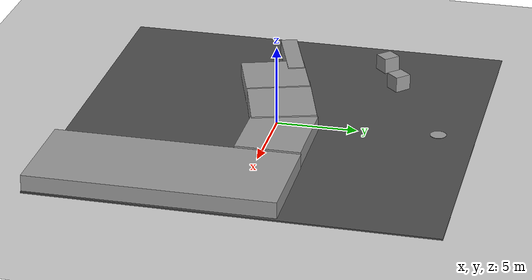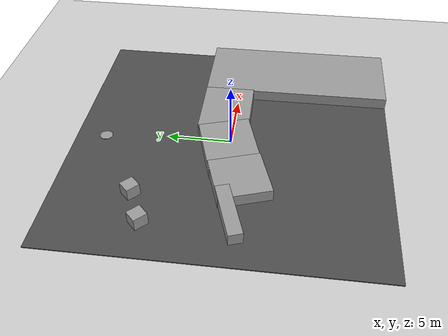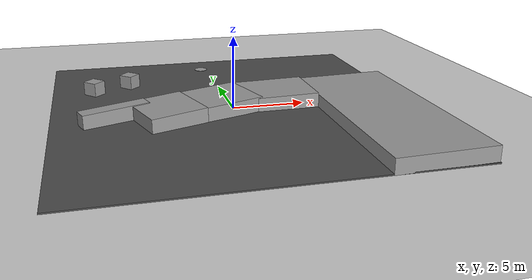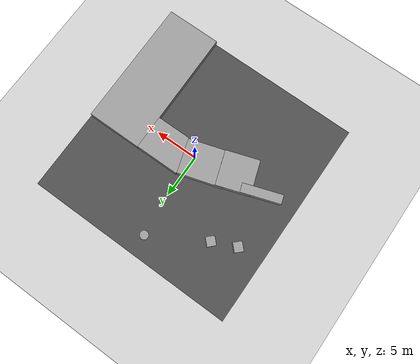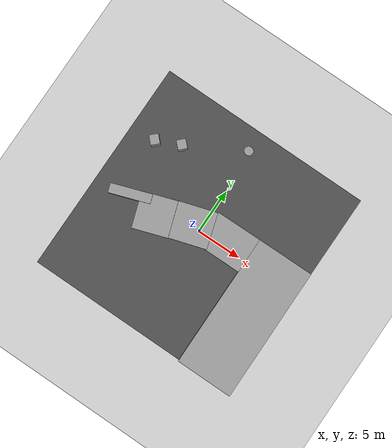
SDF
<sdf version="1.7">
 <world name="default">
  <light name="sun" type="directional">
   <pose>0 0 10 0 -0 0</pose>
   <diffuse>0.8 0.8 0.8 1</diffuse>
   <specular>0.2 0.2 0.2 1</specular>
   <attenuation>
    <range>1000</range>
    <constant>0.9</constant>
    <linear>0.01</linear>
    <quadratic>0.001</quadratic>
   </attenuation>
   <direction>-0.5 0.1 -0.9</direction>
   <spot><inner_angle>0</inner_angle><outer_angle>0</outer_angle><falloff>0</falloff></spot>
  </light>
  <model name="ground_plane">
   <static>1</static>
   <link name="link">
    <collision name="collision">
     <geometry><plane><normal>0 0 1</normal><size>100 100</size></plane></geometry>
     <surface><friction><ode><mu>100</mu><mu2>50</mu2></ode></friction></surface>
    </collision>
    <visual name="visual">
     <cast_shadows>0</cast_shadows>
     <geometry><plane><normal>0 0 1</normal><size>100 100</size></plane></geometry>
     <material>
      <script><uri>file://media/materials/scripts/gazebo.material</uri><name>Gazebo/Grey</name></script>
     </material>
    </visual>
    <velocity_decay><linear>0</linear><angular>0</angular></velocity_decay>
   </link>
  </model>
  <physics type="ode">
   <max_step_size>0.01</max_step_size>
   <real_time_factor>1</real_time_factor>
   <real_time_update_rate>100</real_time_update_rate>
  </physics>
  <scene><ambient>0.4 0.4 0.4 1</ambient><background>0.7 0.7 0.7 1</background><shadows>1</shadows></scene>
  <model name="asphalt_plane">
   <static>1</static>
   <link name="link">
    <collision name="collision"><geometry><box><size>24.4379 24.5229 0.1</size></box></geometry></collision>
    <visual name="visual">
     <cast_shadows>0</cast_shadows>
     <geometry><box><size>24.4379 24.5229 0.1</size></box></geometry>
     <material>
      <script>
       <uri>model://asphalt_plane/materials/scripts</uri>
       <uri>model://asphalt_plane/materials/textures</uri>
       <name>vrc/asphalt</name>
      </script>
     </material>
    </visual>
    <velocity_decay><linear>0</linear><angular>0</angular></velocity_decay>
   </link>
   <pose>0.00297 -0.01888 0 0 -0 0</pose>
  </model>
  <gravity>0 0 -9.8</gravity>
  <magnetic_field>6e-06 2.3e-05 -4.2e-05</magnetic_field>
  <atmosphere type="adiabatic"/>
  <spherical_coordinates>
   <surface_model>EARTH_WGS84</surface_model>
   <latitude_deg>0</latitude_deg>
   <longitude_deg>0</longitude_deg>
   <elevation>0</elevation>
   <heading_deg>0</heading_deg>
  </spherical_coordinates>
  <model name="target">
   <link name="link">
    <inertial>
     <mass>1</mass>
     <inertia><ixx>0.145833</ixx><ixy>0</ixy><ixz>0</ixz><iyy>0.145833</iyy><iyz>0</iyz><izz>0.125</izz></inertia>
    </inertial>
    <visual name="visual">
     <geometry><cylinder><radius>0.5</radius><length>0.0238306</length></cylinder></geometry>
     <material>
      <script><name>Gazebo/Grey</name><uri>file://media/materials/scripts/gazebo.material</uri></script>
      <shader type="pixel"/>
     </material>
    </visual>
    <collision name="collision">
     <geometry><cylinder><radius>0.5</radius><length>0.023831</length></cylinder></geometry>
     <surface>
      <friction>
       <ode><mu>1</mu><mu2>1</mu2><fdir1>0 0 0</fdir1><slip1>0</slip1><slip2>0</slip2></ode>
       <torsional>
        <coefficient>1</coefficient>
        <patch_radius>0</patch_radius>
        <surface_radius>0</surface_radius>
        <use_patch_radius>1</use_patch_radius>
        <ode><slip>0</slip></ode>
       </torsional>
      </friction>
      <bounce><restitution_coefficient>0</restitution_coefficient><threshold>1e+06</threshold></bounce>
      <contact>
       <collide_without_contact>0</collide_without_contact>
       <collide_without_contact_bitmask>1</collide_without_contact_bitmask>
       <collide_bitmask>1</collide_bitmask>
       <ode>
        <soft_cfm>0</soft_cfm>
        <soft_erp>0.2</soft_erp>
        <kp>1e+13</kp>
        <kd>1</kd>
        <max_vel>0.01</max_vel>
        <min_depth>0</min_depth>
       </ode>
       <bullet>
        <split_impulse>1</split_impulse>
        <split_impulse_penetration_threshold>-0.01</split_impulse_penetration_threshold>
        <soft_cfm>0</soft_cfm>
        <soft_erp>0.2</soft_erp>
        <kp>1e+13</kp>
        <kd>1</kd>
       </bullet>
      </contact>
     </surface>
    </collision>
   </link>
   <static>1</static>
   <pose>-0.479745 9.92893 0.061711 -0.000137 -0.000386 0.000976</pose>
  </model>
  <model name="obstacle0">
   <link name="link">
    <inertial>
     <mass>1</mass>
     <inertia>
      <ixx>0.166667</ixx>
      <ixy>0</ixy>
      <ixz>0</ixz>
      <iyy>0.166667</iyy>
      <iyz>0</iyz>
      <izz>0.166667</izz>
     </inertia>
    </inertial>
    <visual name="visual">
     <geometry><box><size>1.08347 1 1</size></box></geometry>
     <material>
      <script><name>Gazebo/Grey</name><uri>file://media/materials/scripts/gazebo.material</uri></script>
      <shader type="pixel"/>
     </material>
    </visual>
    <collision name="collision">
     <geometry><box><size>1.08347 1 1</size></box></geometry>
     <surface>
      <friction>
       <ode><mu>1</mu><mu2>1</mu2><fdir1>0 0 0</fdir1><slip1>0</slip1><slip2>0</slip2></ode>
       <torsional>
        <coefficient>1</coefficient>
        <patch_radius>0</patch_radius>
        <surface_radius>0</surface_radius>
        <use_patch_radius>1</use_patch_radius>
        <ode><slip>0</slip></ode>
       </torsional>
      </friction>
      <bounce><restitution_coefficient>0</restitution_coefficient><threshold>1e+06</threshold></bounce>
      <contact>
       <collide_without_contact>0</collide_without_contact>
       <collide_without_contact_bitmask>1</collide_without_contact_bitmask>
       <collide_bitmask>1</collide_bitmask>
       <ode>
        <soft_cfm>0</soft_cfm>
        <soft_erp>0.2</soft_erp>
        <kp>1e+13</kp>
        <kd>1</kd>
        <max_vel>0.01</max_vel>
        <min_depth>0</min_depth>
       </ode>
       <bullet>
        <split_impulse>1</split_impulse>
        <split_impulse_penetration_threshold>-0.01</split_impulse_penetration_threshold>
        <soft_cfm>0</soft_cfm>
        <soft_erp>0.2</soft_erp>
        <kp>1e+13</kp>
        <kd>1</kd>
       </bullet>
      </contact>
     </surface>
    </collision>
   </link>
   <static>1</static>
   <pose>-9.22721 5.20933 0.521268 0.01277 -0.012525 -0.795139</pose>
  </model>
  <model name="obstacle1">
   <link name="link">
    <inertial>
     <mass>1</mass>
     <inertia>
      <ixx>0.166667</ixx>
      <ixy>0</ixy>
      <ixz>0</ixz>
      <iyy>0.166667</iyy>
      <iyz>0</iyz>
      <izz>0.166667</izz>
     </inertia>
    </inertial>
    <visual name="visual">
     <geometry><box><size>1.05016 4.57892 1</size></box></geometry>
     <material>
      <script><name>Gazebo/Grey</name><uri>file://media/materials/scripts/gazebo.material</uri></script>
      <shader type="pixel"/>
     </material>
    </visual>
    <collision name="collision">
     <geometry><box><size>1.05016 4.57892 1</size></box></geometry>
     <surface>
      <friction>
       <ode><mu>1</mu><mu2>1</mu2><fdir1>0 0 0</fdir1><slip1>0</slip1><slip2>0</slip2></ode>
       <torsional>
        <coefficient>1</coefficient>
        <patch_radius>0</patch_radius>
        <surface_radius>0</surface_radius>
        <use_patch_radius>1</use_patch_radius>
        <ode><slip>0</slip></ode>
       </torsional>
      </friction>
      <bounce><restitution_coefficient>0</restitution_coefficient><threshold>1e+06</threshold></bounce>
      <contact>
       <collide_without_contact>0</collide_without_contact>
       <collide_without_contact_bitmask>1</collide_without_contact_bitmask>
       <collide_bitmask>1</collide_bitmask>
       <ode>
        <soft_cfm>0</soft_cfm>
        <soft_erp>0.2</soft_erp>
        <kp>1e+13</kp>
        <kd>1</kd>
        <max_vel>0.01</max_vel>
        <min_depth>0</min_depth>
       </ode>
       <bullet>
        <split_impulse>1</split_impulse>
        <split_impulse_penetration_threshold>-0.01</split_impulse_penetration_threshold>
        <soft_cfm>0</soft_cfm>
        <soft_erp>0.2</soft_erp>
        <kp>1e+13</kp>
        <kd>1</kd>
       </bullet>
      </contact>
     </surface>
    </collision>
   </link>
   <static>1</static>
   <pose>-8.09975 -0.830754 0.521268 0.01692 -0.005805 -1.24026</pose>
  </model>
  <model name="obstacle2">
   <link name="link">
    <inertial>
     <mass>1</mass>
     <inertia>
      <ixx>0.166667</ixx>
      <ixy>0</ixy>
      <ixz>0</ixz>
      <iyy>0.166667</iyy>
      <iyz>0</iyz>
      <izz>0.166667</izz>
     </inertia>
    </inertial>
    <visual name="visual">
     <geometry><box><size>6.36212 15.0682 1</size></box></geometry>
     <material>
      <script><name>Gazebo/Grey</name><uri>file://media/materials/scripts/gazebo.material</uri></script>
      <shader type="pixel"/>
     </material>
    </visual>
    <collision name="collision">
     <geometry><box><size>6.36212 15.0682 1</size></box></geometry>
     <surface>
      <friction>
       <ode><mu>1</mu><mu2>1</mu2><fdir1>0 0 0</fdir1><slip1>0</slip1><slip2>0</slip2></ode>
       <torsional>
        <coefficient>1</coefficient>
        <patch_radius>0</patch_radius>
        <surface_radius>0</surface_radius>
        <use_patch_radius>1</use_patch_radius>
        <ode><slip>0</slip></ode>
       </torsional>
      </friction>
      <bounce><restitution_coefficient>0</restitution_coefficient><threshold>1e+06</threshold></bounce>
      <contact>
       <collide_without_contact>0</collide_without_contact>
       <collide_without_contact_bitmask>1</collide_without_contact_bitmask>
       <collide_bitmask>1</collide_bitmask>
       <ode>
        <soft_cfm>0</soft_cfm>
        <soft_erp>0.2</soft_erp>
        <kp>1e+13</kp>
        <kd>1</kd>
        <max_vel>0.01</max_vel>
        <min_depth>0</min_depth>
       </ode>
       <bullet>
        <split_impulse>1</split_impulse>
        <split_impulse_penetration_threshold>-0.01</split_impulse_penetration_threshold>
        <soft_cfm>0</soft_cfm>
        <soft_erp>0.2</soft_erp>
        <kp>1e+13</kp>
        <kd>1</kd>
       </bullet>
      </contact>
     </surface>
    </collision>
   </link>
   <static>1</static>
   <pose>8.9171 -4.73497 0.518159 -0.000104 -0.017887 0.005764</pose>
  </model>
  <model name="obstacle5">
   <link name="link">
    <inertial>
     <mass>1</mass>
     <inertia>
      <ixx>0.166667</ixx>
      <ixy>0</ixy>
      <ixz>0</ixz>
      <iyy>0.166667</iyy>
      <iyz>0</iyz>
      <izz>0.166667</izz>
     </inertia>
    </inertial>
    <visual name="visual">
     <geometry><box><size>1.05016 1 1</size></box></geometry>
     <material>
      <script><name>Gazebo/Grey</name><uri>file://media/materials/scripts/gazebo.material</uri></script>
      <shader type="pixel"/>
     </material>
    </visual>
    <collision name="collision">
     <geometry><box><size>1.05016 1 1</size></box></geometry>
     <surface>
      <friction>
       <ode><mu>1</mu><mu2>1</mu2><fdir1>0 0 0</fdir1><slip1>0</slip1><slip2>0</slip2></ode>
       <torsional>
        <coefficient>1</coefficient>
        <patch_radius>0</patch_radius>
        <surface_radius>0</surface_radius>
        <use_patch_radius>1</use_patch_radius>
        <ode><slip>0</slip></ode>
       </torsional>
      </friction>
      <bounce><restitution_coefficient>0</restitution_coefficient><threshold>1e+06</threshold></bounce>
      <contact>
       <collide_without_contact>0</collide_without_contact>
       <collide_without_contact_bitmask>1</collide_without_contact_bitmask>
       <collide_bitmask>1</collide_bitmask>
       <ode>
        <soft_cfm>0</soft_cfm>
        <soft_erp>0.2</soft_erp>
        <kp>1e+13</kp>
        <kd>1</kd>
        <max_vel>0.01</max_vel>
        <min_depth>0</min_depth>
       </ode>
       <bullet>
        <split_impulse>1</split_impulse>
        <split_impulse_penetration_threshold>-0.01</split_impulse_penetration_threshold>
        <soft_cfm>0</soft_cfm>
        <soft_erp>0.2</soft_erp>
        <kp>1e+13</kp>
        <kd>1</kd>
       </bullet>
      </contact>
     </surface>
    </collision>
   </link>
   <static>1</static>
   <pose>-6.5876 6.39005 0.521268 0.012546 -0.012751 -0.777295</pose>
  </model>
  <model name="obstacle6">
   <link name="link">
    <inertial>
     <mass>1</mass>
     <inertia>
      <ixx>0.166667</ixx>
      <ixy>0</ixy>
      <ixz>0</ixz>
      <iyy>0.166667</iyy>
      <iyz>0</iyz>
      <izz>0.166667</izz>
     </inertia>
    </inertial>
    <visual name="visual">
     <geometry><box><size>5.10418 3.99959 1</size></box></geometry>
     <material>
      <script><name>Gazebo/Grey</name><uri>file://media/materials/scripts/gazebo.material</uri></script>
      <shader type="pixel"/>
     </material>
    </visual>
    <collision name="collision">
     <geometry><box><size>5.10418 3.99959 1</size></box></geometry>
     <surface>
      <friction>
       <ode><mu>1</mu><mu2>1</mu2><fdir1>0 0 0</fdir1><slip1>0</slip1><slip2>0</slip2></ode>
       <torsional>
        <coefficient>1</coefficient>
        <patch_radius>0</patch_radius>
        <surface_radius>0</surface_radius>
        <use_patch_radius>1</use_patch_radius>
        <ode><slip>0</slip></ode>
       </torsional>
      </friction>
      <bounce><restitution_coefficient>0</restitution_coefficient><threshold>1e+06</threshold></bounce>
      <contact>
       <collide_without_contact>0</collide_without_contact>
       <collide_without_contact_bitmask>1</collide_without_contact_bitmask>
       <collide_bitmask>1</collide_bitmask>
       <ode>
        <soft_cfm>0</soft_cfm>
        <soft_erp>0.2</soft_erp>
        <kp>1e+13</kp>
        <kd>1</kd>
        <max_vel>0.01</max_vel>
        <min_depth>0</min_depth>
       </ode>
       <bullet>
        <split_impulse>1</split_impulse>
        <split_impulse_penetration_threshold>-0.01</split_impulse_penetration_threshold>
        <soft_cfm>0</soft_cfm>
        <soft_erp>0.2</soft_erp>
        <kp>1e+13</kp>
        <kd>1</kd>
       </bullet>
      </contact>
     </surface>
    </collision>
   </link>
   <static>1</static>
   <pose>3.14934 0.736851 0.52147 -0.000146 -0.017887 0.008184</pose>
  </model>
  <model name="obstacle6_clone">
   <link name="link">
    <inertial>
     <mass>1</mass>
     <inertia>
      <ixx>0.166667</ixx>
      <ixy>0</ixy>
      <ixz>0</ixz>
      <iyy>0.166667</iyy>
      <iyz>0</iyz>
      <izz>0.166667</izz>
     </inertia>
    </inertial>
    <visual name="visual">
     <geometry><box><size>5.15384 3.9996 1</size></box></geometry>
     <material>
      <script><name>Gazebo/Grey</name><uri>file://media/materials/scripts/gazebo.material</uri></script>
      <shader type="pixel"/>
     </material>
    </visual>
    <collision name="collision">
     <geometry><box><size>5.15384 3.9996 1</size></box></geometry>
     <surface>
      <friction>
       <ode><mu>1</mu><mu2>1</mu2><fdir1>0 0 0</fdir1><slip1>0</slip1><slip2>0</slip2></ode>
       <torsional>
        <coefficient>1</coefficient>
        <patch_radius>0</patch_radius>
        <surface_radius>0</surface_radius>
        <use_patch_radius>1</use_patch_radius>
        <ode><slip>0</slip></ode>
       </torsional>
      </friction>
      <bounce><restitution_coefficient>0</restitution_coefficient><threshold>1e+06</threshold></bounce>
      <contact>
       <collide_without_contact>0</collide_without_contact>
       <collide_without_contact_bitmask>1</collide_without_contact_bitmask>
       <collide_bitmask>1</collide_bitmask>
       <ode>
        <soft_cfm>0</soft_cfm>
        <soft_erp>0.2</soft_erp>
        <kp>1e+13</kp>
        <kd>1</kd>
        <max_vel>0.01</max_vel>
        <min_depth>0</min_depth>
       </ode>
       <bullet>
        <split_impulse>1</split_impulse>
        <split_impulse_penetration_threshold>-0.01</split_impulse_penetration_threshold>
        <soft_cfm>0</soft_cfm>
        <soft_erp>0.2</soft_erp>
        <kp>1e+13</kp>
        <kd>1</kd>
       </bullet>
      </contact>
     </surface>
    </collision>
   </link>
   <static>1</static>
   <pose>-1.3237 -0.04426 0.52147 -0.005319 -0.017078 0.301979</pose>
  </model>
  <model name="obstacle6_clone_0">
   <link name="link">
    <inertial>
     <mass>1</mass>
     <inertia>
      <ixx>0.166667</ixx>
      <ixy>0</ixy>
      <ixz>0</ixz>
      <iyy>0.166667</iyy>
      <iyz>0</iyz>
      <izz>0.166667</izz>
     </inertia>
    </inertial>
    <visual name="visual">
     <geometry><box><size>3.9487 3.9996 1</size></box></geometry>
     <material>
      <script><name>Gazebo/Grey</name><uri>file://media/materials/scripts/gazebo.material</uri></script>
      <shader type="pixel"/>
     </material>
    </visual>
    <collision name="collision">
     <geometry><box><size>3.9487 3.9996 1</size></box></geometry>
     <surface>
      <friction>
       <ode><mu>1</mu><mu2>1</mu2><fdir1>0 0 0</fdir1><slip1>0</slip1><slip2>0</slip2></ode>
       <torsional>
        <coefficient>1</coefficient>
        <patch_radius>0</patch_radius>
        <surface_radius>0</surface_radius>
        <use_patch_radius>1</use_patch_radius>
        <ode><slip>0</slip></ode>
       </torsional>
      </friction>
      <bounce><restitution_coefficient>0</restitution_coefficient><threshold>1e+06</threshold></bounce>
      <contact>
       <collide_without_contact>0</collide_without_contact>
       <collide_without_contact_bitmask>1</collide_without_contact_bitmask>
       <collide_bitmask>1</collide_bitmask>
       <ode>
        <soft_cfm>0</soft_cfm>
        <soft_erp>0.2</soft_erp>
        <kp>1e+13</kp>
        <kd>1</kd>
        <max_vel>0.01</max_vel>
        <min_depth>0</min_depth>
       </ode>
       <bullet>
        <split_impulse>1</split_impulse>
        <split_impulse_penetration_threshold>-0.01</split_impulse_penetration_threshold>
        <soft_cfm>0</soft_cfm>
        <soft_erp>0.2</soft_erp>
        <kp>1e+13</kp>
        <kd>1</kd>
       </bullet>
      </contact>
     </surface>
    </collision>
   </link>
   <static>1</static>
   <pose>-4.75559 -1.20564 0.52147 -0.000146 -0.017887 0.325937</pose>
  </model>
 </world>
</sdf>
